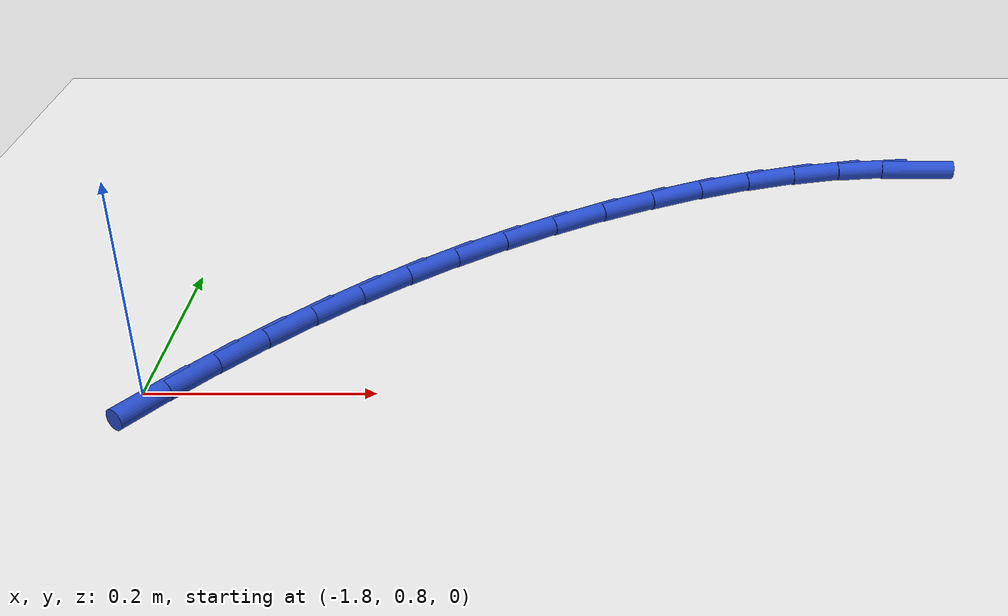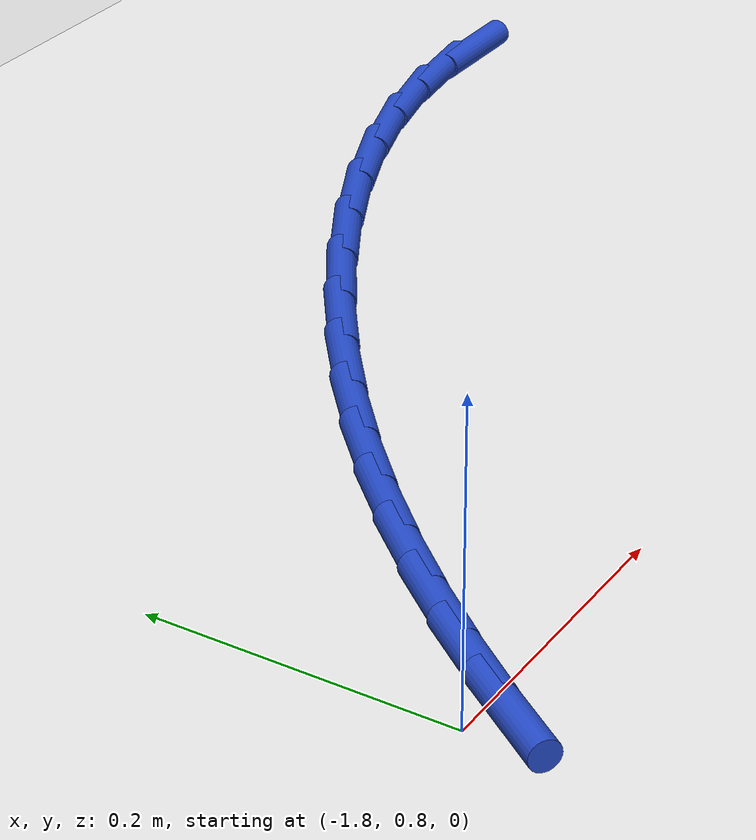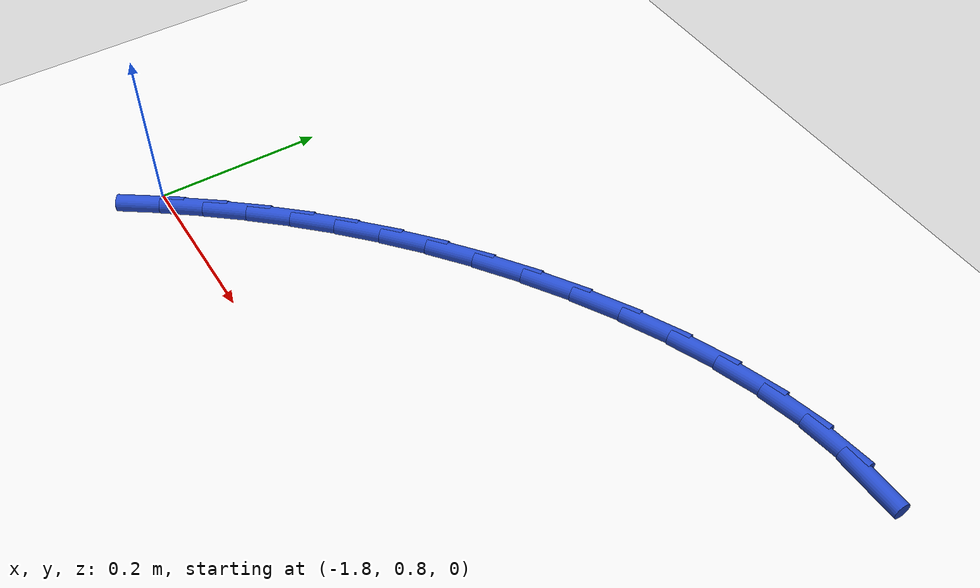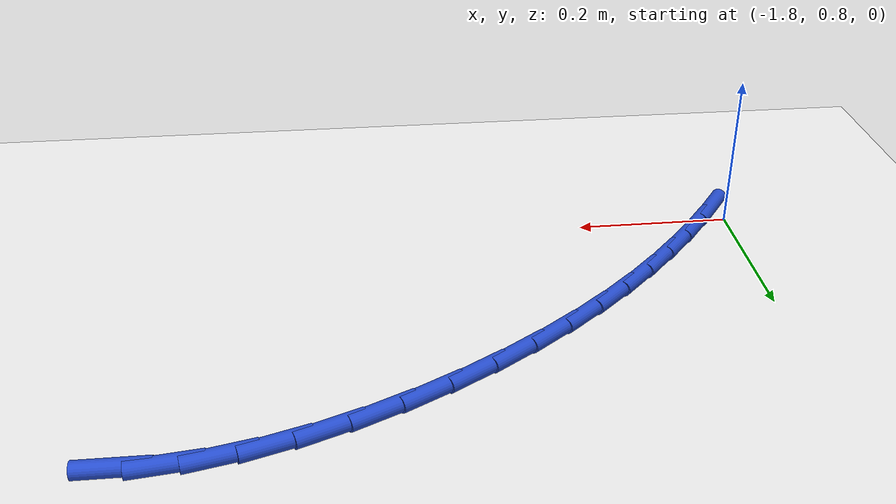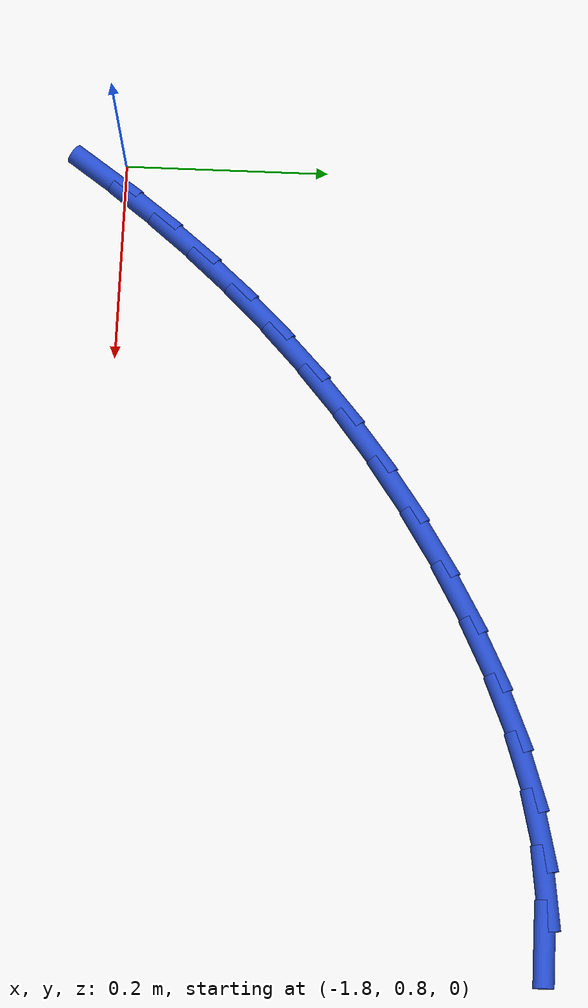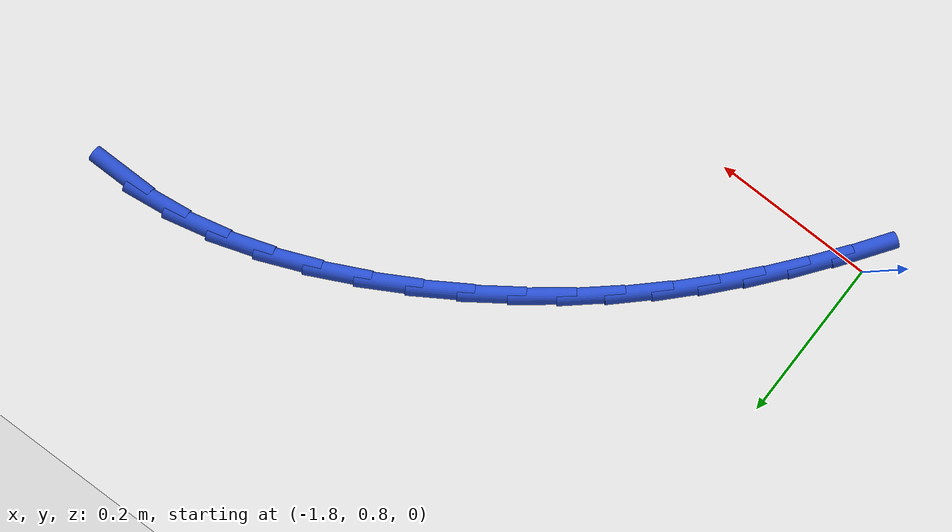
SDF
<sdf version="1.6">
 <world name="default">
  <model name="ground_plane">
   <static>1</static>
   <link name="link">
    <collision name="collision">
     <geometry><plane><normal>0 0 1</normal><size>100 100</size></plane></geometry>
     <surface><friction><ode><mu>100</mu><mu2>50</mu2></ode></friction></surface>
    </collision>
    <visual name="visual">
     <cast_shadows>0</cast_shadows>
     <geometry><plane><normal>0 0 1</normal><size>100 100</size></plane></geometry>
     <material>
      <script><uri>file://media/materials/scripts/gazebo.material</uri><name>Gazebo/WhiteGlow</name></script>
     </material>
    </visual>
   </link>
  </model>
  <model name="line">
   <link name="link_32">
    <pose>-1.052061212442856 1.2287086837080292 0.01 0 1.57 -0.0007733303335176006</pose>
    <collision name="collision">
     <geometry><cylinder><radius>0.01</radius><length>0.08</length></cylinder></geometry>
    </collision>
    <visual name="visual">
     <material>
      <script><name>Gazebo/Blue</name><uri>file://media/materials/scripts/gazebo.material</uri></script>
     </material>
     <geometry><cylinder><radius>0.01</radius><length>0.08</length></cylinder></geometry>
    </visual>
   </link>
   <link name="link_33">
    <pose>-1.1028468058581145 1.228747957755752 0.01 0 1.57 0.12777248841913258</pose>
    <collision name="collision">
     <geometry><cylinder><radius>0.01</radius><length>0.08</length></cylinder></geometry>
    </collision>
    <visual name="visual">
     <material>
      <script><name>Gazebo/Blue</name><uri>file://media/materials/scripts/gazebo.material</uri></script>
     </material>
     <geometry><cylinder><radius>0.01</radius><length>0.08</length></cylinder></geometry>
    </visual>
   </link>
   <link name="link_34">
    <pose>-1.1555789076694358 1.2219733386542613 0.01 0 1.57 0.23334186617847436</pose>
    <collision name="collision">
     <geometry><cylinder><radius>0.01</radius><length>0.08</length></cylinder></geometry>
    </collision>
    <visual name="visual">
     <material>
      <script><name>Gazebo/Blue</name><uri>file://media/materials/scripts/gazebo.material</uri></script>
     </material>
     <geometry><cylinder><radius>0.01</radius><length>0.08</length></cylinder></geometry>
    </visual>
   </link>
   <link name="link_35">
    <pose>-1.209576280715525 1.2091397174694487 0.01 0 1.57 0.3208257212200357</pose>
    <collision name="collision">
     <geometry><cylinder><radius>0.01</radius><length>0.08</length></cylinder></geometry>
    </collision>
    <visual name="visual">
     <material>
      <script><name>Gazebo/Blue</name><uri>file://media/materials/scripts/gazebo.material</uri></script>
     </material>
     <geometry><cylinder><radius>0.01</radius><length>0.08</length></cylinder></geometry>
    </visual>
   </link>
   <link name="link_36">
    <pose>-1.264157687835088 1.1910019852672067 0.01 0 1.57 0.3945596496194565</pose>
    <collision name="collision">
     <geometry><cylinder><radius>0.01</radius><length>0.08</length></cylinder></geometry>
    </collision>
    <visual name="visual">
     <material>
      <script><name>Gazebo/Blue</name><uri>file://media/materials/scripts/gazebo.material</uri></script>
     </material>
     <geometry><cylinder><radius>0.01</radius><length>0.08</length></cylinder></geometry>
    </visual>
   </link>
   <link name="link_37">
    <pose>-1.3186418918668306 1.1683150331134262 0.01 0 1.57 0.4580969444143161</pose>
    <collision name="collision">
     <geometry><cylinder><radius>0.01</radius><length>0.08</length></cylinder></geometry>
    </collision>
    <visual name="visual">
     <material>
      <script><name>Gazebo/Blue</name><uri>file://media/materials/scripts/gazebo.material</uri></script>
     </material>
     <geometry><cylinder><radius>0.01</radius><length>0.08</length></cylinder></geometry>
    </visual>
   </link>
   <link name="link_38">
    <pose>-1.3723476556494596 1.141833752073999 0.01 0 1.57 0.5143109163401384</pose>
    <collision name="collision">
     <geometry><cylinder><radius>0.01</radius><length>0.08</length></cylinder></geometry>
    </collision>
    <visual name="visual">
     <material>
      <script><name>Gazebo/Blue</name><uri>file://media/materials/scripts/gazebo.material</uri></script>
     </material>
     <geometry><cylinder><radius>0.01</radius><length>0.08</length></cylinder></geometry>
    </visual>
   </link>
   <link name="link_39">
    <pose>-1.4245937420216799 1.1123130332148166 0.01 0 1.57 0.5655941857608556</pose>
    <collision name="collision">
     <geometry><cylinder><radius>0.01</radius><length>0.08</length></cylinder></geometry>
    </collision>
    <visual name="visual">
     <material>
      <script><name>Gazebo/Blue</name><uri>file://media/materials/scripts/gazebo.material</uri></script>
     </material>
     <geometry><cylinder><radius>0.01</radius><length>0.08</length></cylinder></geometry>
    </visual>
   </link>
   <link name="link_40">
    <pose>-1.4746989138221978 1.0805077676017714 0.01 0 1.57 0.6141438400663529</pose>
    <collision name="collision">
     <geometry><cylinder><radius>0.01</radius><length>0.08</length></cylinder></geometry>
    </collision>
    <visual name="visual">
     <material>
      <script><name>Gazebo/Blue</name><uri>file://media/materials/scripts/gazebo.material</uri></script>
     </material>
     <geometry><cylinder><radius>0.01</radius><length>0.08</length></cylinder></geometry>
    </visual>
   </link>
   <link name="link_41">
    <pose>-1.5220298660060072 1.0471344828051465 0.01 0 1.57 0.6620774796251107</pose>
    <collision name="collision">
     <geometry><cylinder><radius>0.01</radius><length>0.08</length></cylinder></geometry>
    </collision>
    <visual name="visual">
     <material>
      <script><name>Gazebo/Blue</name><uri>file://media/materials/scripts/gazebo.material</uri></script>
     </material>
     <geometry><cylinder><radius>0.01</radius><length>0.08</length></cylinder></geometry>
    </visual>
   </link>
   <link name="link_42">
    <pose>-1.5664721701298854 1.0124944123966553 0.01 0 1.57 0.709567936229228</pose>
    <collision name="collision">
     <geometry><cylinder><radius>0.01</radius><length>0.08</length></cylinder></geometry>
    </collision>
    <visual name="visual">
     <material>
      <script><name>Gazebo/Blue</name><uri>file://media/materials/scripts/gazebo.material</uri></script>
     </material>
     <geometry><cylinder><radius>0.01</radius><length>0.08</length></cylinder></geometry>
    </visual>
   </link>
   <link name="link_43">
    <pose>-1.6082288098166106 0.9766347424044683 0.01 0 1.57 0.7560177972843382</pose>
    <collision name="collision">
     <geometry><cylinder><radius>0.01</radius><length>0.08</length></cylinder></geometry>
    </collision>
    <visual name="visual">
     <material>
      <script><name>Gazebo/Blue</name><uri>file://media/materials/scripts/gazebo.material</uri></script>
     </material>
     <geometry><cylinder><radius>0.01</radius><length>0.08</length></cylinder></geometry>
    </visual>
   </link>
   <link name="link_44">
    <pose>-1.6475073314262612 0.9395990069722607 0.01 0 1.57 0.8008315645626586</pose>
    <collision name="collision">
     <geometry><cylinder><radius>0.01</radius><length>0.08</length></cylinder></geometry>
    </collision>
    <visual name="visual">
     <material>
      <script><name>Gazebo/Blue</name><uri>file://media/materials/scripts/gazebo.material</uri></script>
     </material>
     <geometry><cylinder><radius>0.01</radius><length>0.08</length></cylinder></geometry>
    </visual>
   </link>
   <link name="link_45">
    <pose>-1.6845152813189148 0.901430740243707 0.01 0 1.57 0.8434489339951741</pose>
    <collision name="collision">
     <geometry><cylinder><radius>0.01</radius><length>0.08</length></cylinder></geometry>
    </collision>
    <visual name="visual">
     <material>
      <script><name>Gazebo/Blue</name><uri>file://media/materials/scripts/gazebo.material</uri></script>
     </material>
     <geometry><cylinder><radius>0.01</radius><length>0.08</length></cylinder></geometry>
    </visual>
   </link>
   <link name="link_46">
    <pose>-1.7194602058546495 0.8621734763624816 0.01 0 1.57 0.8833675874158555</pose>
    <collision name="collision">
     <geometry><cylinder><radius>0.01</radius><length>0.08</length></cylinder></geometry>
    </collision>
    <visual name="visual">
     <material>
      <script><name>Gazebo/Blue</name><uri>file://media/materials/scripts/gazebo.material</uri></script>
     </material>
     <geometry><cylinder><radius>0.01</radius><length>0.08</length></cylinder></geometry>
    </visual>
   </link>
   <link name="link_47">
    <pose>-1.7525496513935426 0.8218707494722596 0.01 0 1.57 0.920159399460086</pose>
    <collision name="collision">
     <geometry><cylinder><radius>0.01</radius><length>0.08</length></cylinder></geometry>
    </collision>
    <visual name="visual">
     <material>
      <script><name>Gazebo/Blue</name><uri>file://media/materials/scripts/gazebo.material</uri></script>
     </material>
     <geometry><cylinder><radius>0.01</radius><length>0.08</length></cylinder></geometry>
    </visual>
   </link>
   <link name="link_48">
    <pose>-1.7839911642956712 0.7805660937167157 0.01 0 1.57 0.95348010046353</pose>
    <collision name="collision">
     <geometry><cylinder><radius>0.01</radius><length>0.08</length></cylinder></geometry>
    </collision>
    <visual name="visual">
     <material>
      <script><name>Gazebo/Blue</name><uri>file://media/materials/scripts/gazebo.material</uri></script>
     </material>
     <geometry><cylinder><radius>0.01</radius><length>0.08</length></cylinder></geometry>
    </visual>
   </link>
  </model>
 </world>
</sdf>
